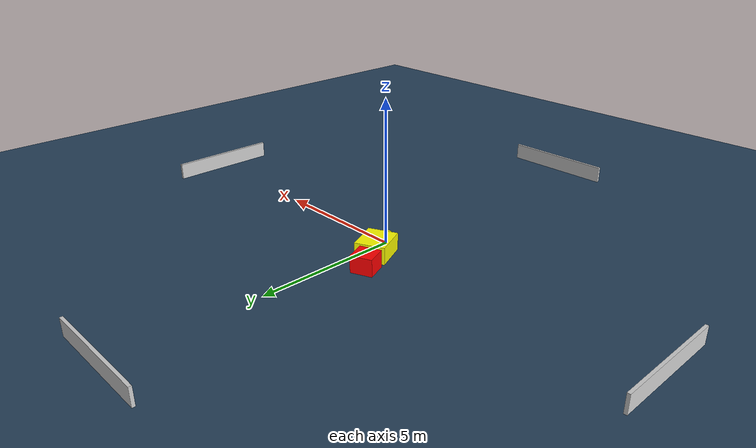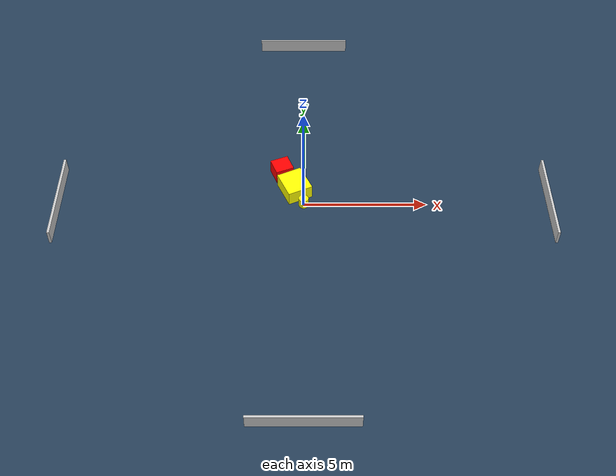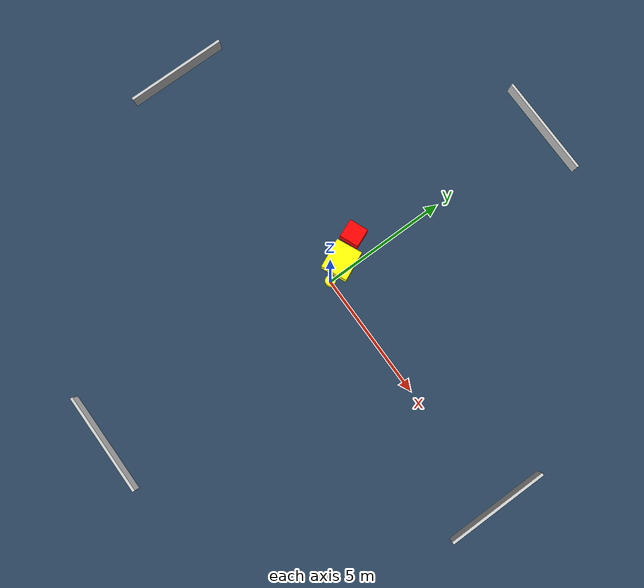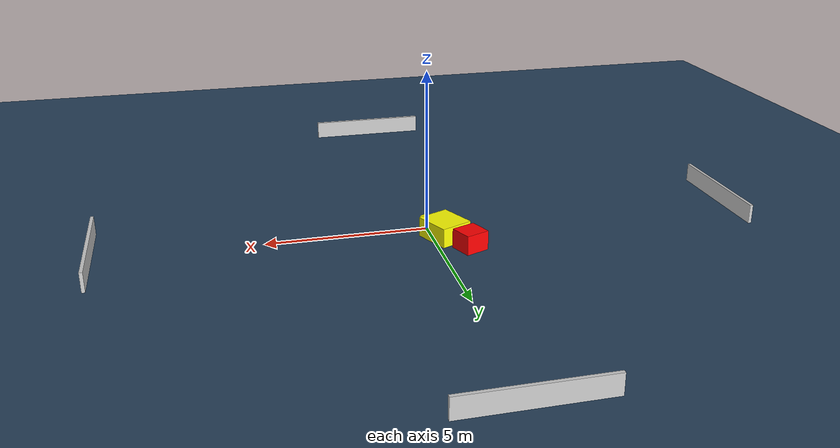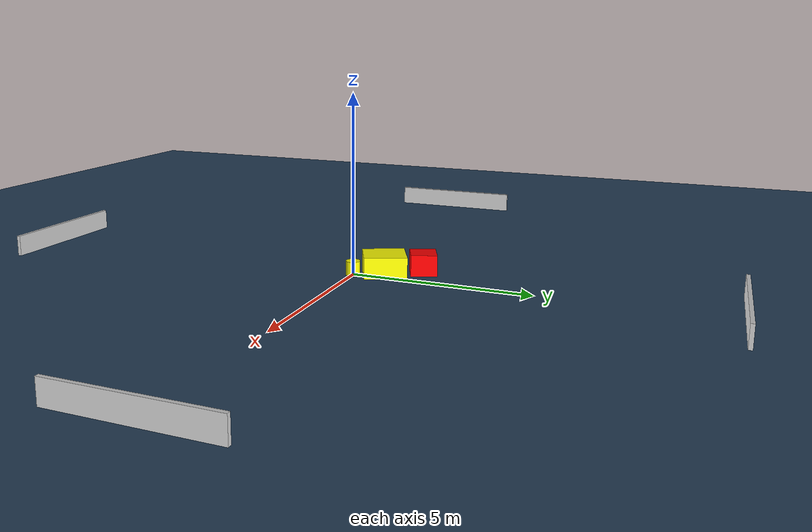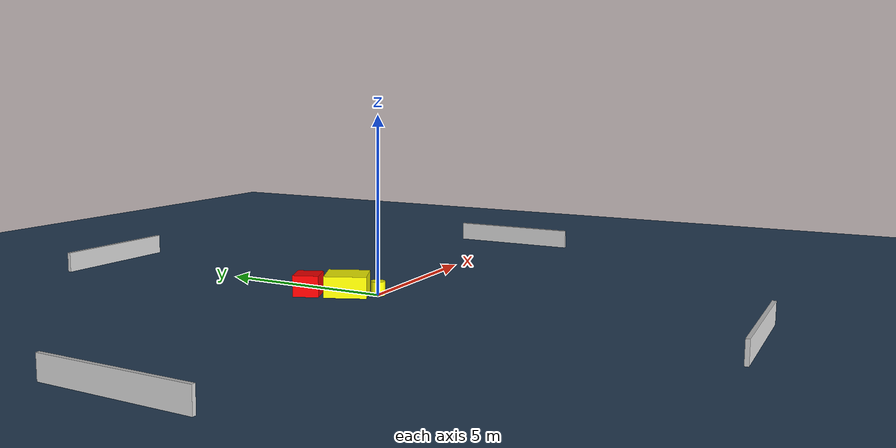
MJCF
<?xml version="1.0" ?>
<mujoco model="generated_environment">
  <option timestep="0.01" integrator="RK4" cone="elliptic"/>
  <default>
    <geom density="1"/>
  </default>
  <asset>
    <texture builtin="gradient" height="3072" name="skybox" rgb1="0.3 0.5 0.7" rgb2="0 0 0" type="skybox" width="512"/>
    <texture builtin="checker" height="300" name="groundplane" rgb1="0.2 0.3 0.4" rgb2="0.1 0.2 0.3" type="2d" width="300"/>
    <material name="groundplane" reflectance="0.2" texrepeat="5 5" texture="groundplane"/>
  </asset>
  <worldbody>
    <light dir="0 0 -1" directional="true" pos="0 0 1.5"/>
    <geom condim="3" friction="0.5 0.005 0.001" material="groundplane" name="floor" pos="0 0 0" size="0 0 0.05" type="plane"/>
    <body name="walls">
      <geom name="wall_1" condim="4" pos="-10.0 0.0 0.3" rgba="0.800000011920929 0.800000011920929 0.800000011920929 1.0" size="0.05 2.0 0.3" type="box"/>
      <geom name="wall_2" condim="4" pos="10.0 0.0 0.3" rgba="0.800000011920929 0.800000011920929 0.800000011920929 1.0" size="0.05 2.0 0.3" type="box"/>
      <geom name="wall_3" condim="4" pos="0.0 -10.0 0.3" rgba="0.800000011920929 0.800000011920929 0.800000011920929 1.0" size="2.0 0.05 0.3" type="box"/>
      <geom name="wall_4" condim="4" pos="0.0 10.0 0.3" rgba="0.800000011920929 0.800000011920929 0.800000011920929 1.0" size="2.0 0.05 0.3" type="box"/>
    </body>
    <body name="robot">
      <joint name="joint_x" type="slide" pos="0 0 0" axis="1 0 0"/>
      <joint name="joint_y" type="slide" pos="0 0 0" axis="0 1 0"/>
      <geom name="robot" type="cylinder" pos="0.0 0.0 0.2" size="0.2 0.2 0.0" mass="5.0" friction="1.0 0.005 0.0001" condim="4" rgba="1.0 1.0 0.0 1.0"/>
    </body>
    <body name="obstacle_1_movable">
      <geom name="obstacle_1_movable" condim="4" pos="-0.3682356526788189 0.7836688422332546 0.3" euler="0 0 204.48819970157763" friction="0.0 0.005 0.001" rgba="1.0 1.0 0.0 1.0" size="0.520806010797626 0.5925935276103028 0.3" type="box" mass="0.1"/>
      <joint type="free"/>
    </body>
    <body name="obstacle_2_static">
      <geom name="obstacle_2_static" condim="4" pos="-0.9031182424048209 1.7342941899458786 0.3" euler="0 0 22.097952241926627" friction="0.0 0.005 0.001" rgba="1.0 0.0 0.0 1.0" size="0.3801151145654243 0.36317439963764786 0.3" type="box"/>
    </body>
  </worldbody>
  <actuator>
    <motor name="actuator_x" joint="joint_x" gear="1" ctrlrange="-1 1"/>
    <motor name="actuator_y" joint="joint_y" gear="1" ctrlrange="-1 1"/>
  </actuator>
</mujoco>
